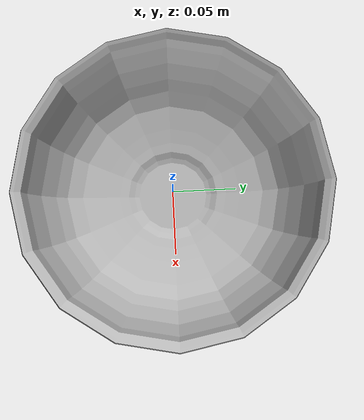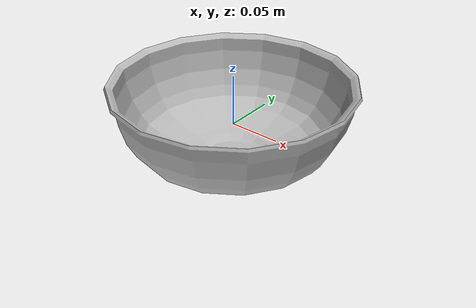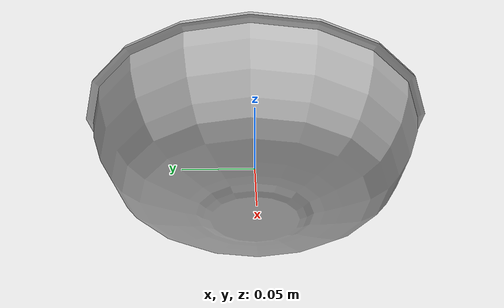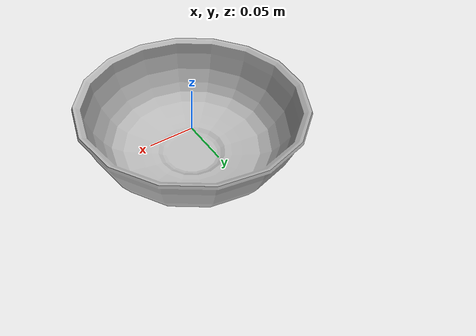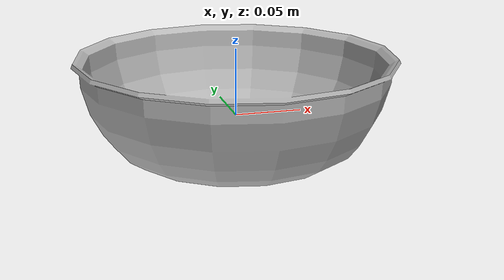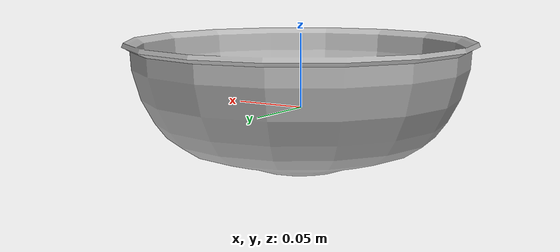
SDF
<?xml version="1.0" ?>
<sdf version="1.5">
  <model name="bowl">
    <link name="bowl">
      <gravity>false</gravity>
      <inertial>
        <mass>0.02</mass>
      </inertial>
      <collision name="bowl_collision">
        <geometry><box><size>0.0001 0.0001 0.0001</size></box></geometry>
          <surface>
            <contact>
              <collide_without_contact>true</collide_without_contact>
            </contact>
          </surface>
      </collision>
      <visual name="bowl_visual">
        <geometry>
          <mesh>
            <uri>model://bowl/meshes/bowl.stl</uri>
          </mesh>
        </geometry>
      </visual>
    </link>
  </model>
</sdf>
